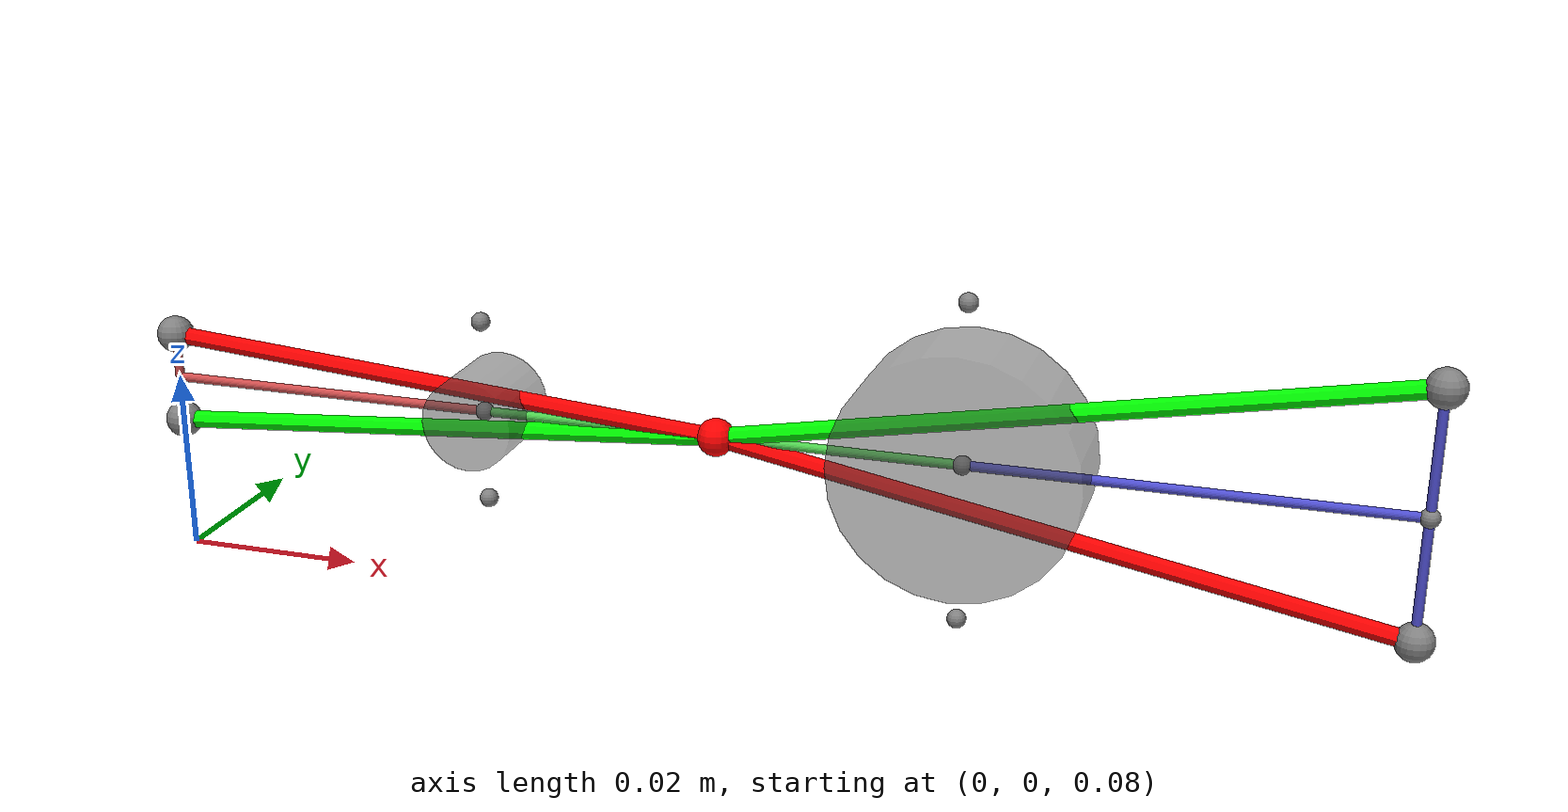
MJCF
<?xml version="1.0" ?>
<mujoco>
    <option timestep="1e-4" integrator="RK4" gravity="0 0 0"/>

    <default>
        <joint damping="0.001"/>
    </default>

    <worldbody>
        <light pos="0 0 3" dir="0 0 -1"/>
        <geom type="plane" size="1 1 0.1" rgba=".9 0 0 1"/>

        <body name="mid1" pos="0.063 0 0.1">
            <site name="mid1_site" pos="0 0 0" type="sphere" size="0.001"/>
            <joint name="mid1_x" type="slide" axis="1 0 0"/>
            <joint name="mid1_z" type="slide" axis="0 0 1"/>
            <geom type="sphere" size="0.002" rgba="1 0 0 1"/>
        </body>

        <body name="mid2" pos="0.063 0 0.1">
            <site name="mid2_site" pos="0 0 0" type="sphere" size="0.001"/>
            <joint name="mid2_x" type="slide" axis="1 0 0"/>
            <joint name="mid2_z" type="slide" axis="0 0 1"/>
            <geom type="sphere" size="0.002" rgba="0 1 0 1"/>
        </body>

        <body name="base" pos="0 0 0.1">
            <geom type="cylinder" size=".0005 .005" rgba=".8 .3 .3 1"/>
            <site name="anchor1a" pos="0 0 0.005" type="sphere" size="0.002"/>
            <site name="anchor1b" pos="0 0 -0.005" type="sphere" size="0.002"/>
            <body name="link1" pos="0 0 0">
                <geom name="link1_geom" type="cylinder" size=".0005 .0185" fromto="0 0 0 0.037 0 0" rgba=".8 .3 .3 1" contype="0" conaffinity="0"/>
                <body name="link2" pos="0.037 0 0">
                    <joint name="joint1" type="hinge" axis="0 1 0" pos="0 0 0"/>
                    <geom name="link2_geom" type="cylinder" size=".0005 0.026" fromto="0 0 0 0.052 0 0" rgba=".3 .8 .3 1" contype="0" conaffinity="0"/>
                    <geom name="cyl1" type="cylinder" size=".005 .005" euler="90 0 0" rgba=".3 .3 .3 0.5"/>
                    <site name="wrap1a" pos="0 0 0.01" type="sphere" size="0.001"/>
                    <site name="wrap1b" pos="0 0 -0.01" type="sphere" size="0.001"/>
                    <site name="center1" pos="0 0 0" type="sphere" size="0.001"/>
                    <body name="link3" pos="0.052 0 0">
                        <joint name="joint2" type="hinge" axis="0 1 0" pos="0 0 0"/>
                        <geom name="link3_geom" type="cylinder" size=".0005 .005" fromto="0 0 0 0.045 0 0" rgba=".3 .3 .8 1" contype="0" conaffinity="0"/>
                        <geom name="cyl2" type="cylinder" size=".013 .005" euler="90 0 0" rgba=".3 .3 .3 0.5"/>
                        <site name="wrap2a" pos="0 0 0.017" type="sphere" size="0.001"/>
                        <site name="wrap2b" pos="0 0 -0.017" type="sphere" size="0.001"/>
                        <site name="center2" pos="0 0 0" type="sphere" size="0.001"/>
                        <body name="end_effector" pos="0.045 0 0">
                            <geom type="cylinder" size=".0005 .013" rgba=".3 .3 .8 1"/>
                            <site name="anchor2a" pos="0 0 .013" type="sphere" size="0.002"/>
                            <site name="anchor2b" pos="0 0 -.013" type="sphere" size="0.002"/>
                            <site name="end_effector" pos="0 0 0" type="sphere" size="0.001"/>
                        </body>
                    </body>
                </body>
            </body>
        </body>
    </worldbody>

    <tendon>
        <spatial name="spring1" width="0.001" rgba="1 0 0 1" stiffness="50" damping="10">
            <site site="anchor1a"/>
            <geom geom="cyl1" sidesite="wrap1a"/>
            <site site="mid1_site"/>
            <geom geom="cyl2" sidesite="wrap2b"/>
            <site site="anchor2b"/>
        </spatial>

        <spatial name="spring2" width="0.001" rgba="0 1 0 1" stiffness="50" damping="10">
            <site site="anchor1b"/>
            <geom geom="cyl1" sidesite="wrap1b"/>
            <site site="mid2_site"/>
            <geom geom="cyl2" sidesite="wrap2a"/>
            <site site="anchor2a"/>
        </spatial>
    </tendon>

    <equality>
        <connect site1="mid1_site" site2="center1"/>
        <connect site1="mid1_site" site2="center2"/>
        <connect site1="mid2_site" site2="center1"/>
        <connect site1="mid2_site" site2="center2"/>
    </equality>

    <actuator>
        <motor name="motor_q1" joint="joint1" gear="1"/>
        <motor name="motor_q2" joint="joint2" gear="1"/>
    </actuator>

    <sensor>
        <jointpos name="sensor_q1" joint="joint1"/>
        <jointvel name="sensor_q1_vel" joint="joint1"/>
        <jointpos name="sensor_q2" joint="joint2"/>
        <jointvel name="sensor_q2_vel" joint="joint2"/>
    </sensor>
</mujoco>
